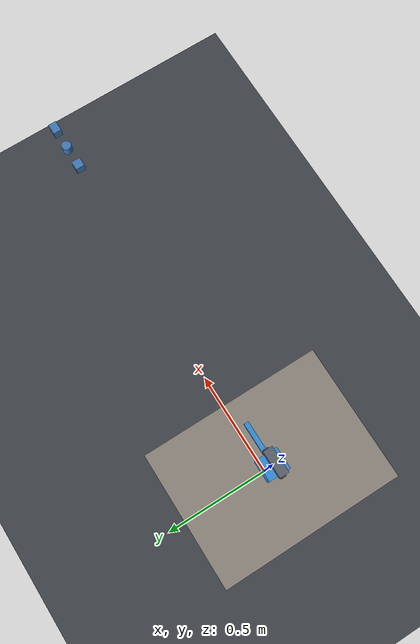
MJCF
<mujoco model="grasp_cell">
  <compiler angle="radian" autolimits="true"/>

  <option timestep="0.002" integrator="implicitfast" cone="elliptic" impratio="30"
          gravity="0 0 -9.81"/>

  <visual>
    <headlight diffuse="0.6 0.6 0.6" ambient="0.3 0.3 0.3" specular="0 0 0"/>
    <rgba haze="0.15 0.25 0.35 1"/>
    <global azimuth="140" elevation="-25" offwidth="640" offheight="480"/>
  </visual>

  <default>
    <geom solimp="0.95 0.99 0.001" solref="0.005 1"/>
    <default class="finger">
      <geom type="box" size="0.010 0.009 0.033" condim="4" friction="1.2 0.05 0.0005"
            rgba="0.25 0.27 0.32 1" mass="0.02"/>
    </default>
    <default class="pad">
      <geom type="box" size="0.002 0.009 0.018" condim="4" friction="0.05 0.10 0.002"
            solimp="0.92 0.97 0.002" solref="0.008 1" rgba="0.85 0.45 0.20 1" mass="0.005"/>
    </default>
  </default>

  <asset>
    <texture name="skybox" type="skybox" builtin="gradient" rgb1="0.35 0.45 0.55"
             rgb2="0.05 0.07 0.10" width="256" height="256"/>
    <texture name="grid" type="2d" builtin="checker" rgb1="0.22 0.24 0.26"
             rgb2="0.28 0.30 0.32" width="300" height="300"/>
    <material name="grid" texture="grid" texrepeat="6 6" reflectance="0.05"/>
    <material name="table" rgba="0.55 0.52 0.48 1" reflectance="0.02"/>
    <material name="object" rgba="0.20 0.55 0.85 1"/>
    <material name="clutter" rgba="0.26 0.48 0.72 1"/>
  </asset>

  <worldbody>
    <light name="key" pos="0.4 -0.4 1.6" dir="-0.3 0.3 -1" directional="true"/>
    <geom name="floor" type="plane" size="2 2 0.05" material="grid"/>

    <!-- Table: top face at z = 0.40 -->
    <body name="table" pos="0 0 0.20">
      <geom name="table_top" type="box" size="0.30 0.40 0.20" material="table"
            friction="0.8 0.02 0.0002" condim="4"/>
    </body>

    <!-- Parallel-jaw hand. Free body, welded to "mocap" below. -->
    <body name="hand" pos="0 0 0.60">
      <freejoint name="hand_free"/>
      <inertial pos="0 0 0" mass="0.6" diaginertia="0.002 0.002 0.002"/>
      <camera name="wrist_cam" pos="0 -0.055 0.030" xyaxes="1 0 0 0 0.5 -0.866"/>
      <geom name="palm" type="box" size="0.056 0.020 0.018" pos="0 0 0.022"
            rgba="0.35 0.38 0.44 1" mass="0.3" contype="1" conaffinity="1"/>
      <site name="grip_site" pos="0 0 -0.046" size="0.005" rgba="1 0 0 0.0"/>

      <body name="left_finger" pos="-0.052 0 -0.033">
        <joint name="left_slide" type="slide" axis="1 0 0" range="0 0.040"
               damping="8" armature="0.002"/>
        <geom name="left_finger" class="finger"/>
        <geom name="left_pad" class="pad" pos="0.011 0 -0.013"/>
      </body>

      <body name="right_finger" pos="0.052 0 -0.033">
        <joint name="right_slide" type="slide" axis="-1 0 0" range="0 0.040"
               damping="8" armature="0.002"/>
        <geom name="right_finger" class="finger"/>
        <geom name="right_pad" class="pad" pos="-0.011 0 -0.013"/>
      </body>
    </body>

    <!-- Mocap target the policy commands. -->
    <body name="mocap" mocap="true" pos="0 0 0.60">
      <geom name="mocap_marker" type="box" size="0.004 0.004 0.004" rgba="0.9 0.9 0.2 0.25"
            contype="0" conaffinity="0"/>
    </body>

    <!-- Object to grasp. Size, mass and friction are overwritten at reset by
         the domain randomiser; the values here are the nominal ones. -->
    <body name="clutter0" pos="1.5 0 0.425">
      <freejoint name="clutter0_free"/>
      <geom name="clutter0" type="box" size="0.020 0.020 0.020" material="clutter"
            friction="1.0 0.005 0.0001" mass="0.05"/>
    </body>
    <body name="clutter1" pos="1.6 0 0.425">
      <freejoint name="clutter1_free"/>
      <geom name="clutter1" type="cylinder" size="0.021 0.021" material="clutter"
            friction="1.0 0.005 0.0001" mass="0.05"/>
    </body>
    <body name="clutter2" pos="1.7 0 0.425">
      <freejoint name="clutter2_free"/>
      <geom name="clutter2" type="box" size="0.024 0.018 0.020" material="clutter"
            friction="1.0 0.005 0.0001" mass="0.05"/>
    </body>

    <body name="object" pos="0 0 0.451">
      <freejoint name="object_free"/>
      <geom name="object" type="box" size="0.048 0.048 0.048" material="object"
            mass="0.08" friction="1.0 0.05 0.0005" condim="4"/>
      <geom name="object_handle" type="box" size="0.070 0.010 0.010"
            pos="0.118 0 0.034" material="object" mass="0.02"
            friction="1.0 0.05 0.0005" condim="4"/>
    </body>

    <!-- Goal marker, moved at reset. Visual only. -->
    <site name="goal" pos="0 0 0.55" type="sphere" size="0.018"
          rgba="0.20 0.85 0.35 0.35"/>

    <!-- Both cameras are aimed at (0, 0, 0.50), the middle of the volume the
         hand actually works in. Framed tight enough that a 44 mm box is
         legible in a 320-pixel-wide GIF. -->
    <camera name="scene_cam" pos="0.62 -0.62 0.78" xyaxes="0.707 0.707 0 -0.215 0.215 0.953"/>
    <camera name="front_cam" pos="0 -0.70 0.60" xyaxes="1 0 0 0 0.158 0.988"/>
  </worldbody>

  <equality>
    <!-- Drags the hand to the commanded mocap pose. solref is soft enough that
         contact forces can visibly resist the command. -->
    <weld body1="mocap" body2="hand" solref="0.02 1" solimp="0.9 0.95 0.001"/>
  </equality>

  <actuator>
    <position name="left_drive"  joint="left_slide"  kp="300" ctrlrange="0 0.040" forcerange="-60 60"/>
    <position name="right_drive" joint="right_slide" kp="300" ctrlrange="0 0.040" forcerange="-60 60"/>
  </actuator>

  <sensor>
    <framepos name="grip_pos" objtype="site" objname="grip_site"/>
    <framepos name="object_pos" objtype="body" objname="object"/>
  </sensor>
</mujoco>
